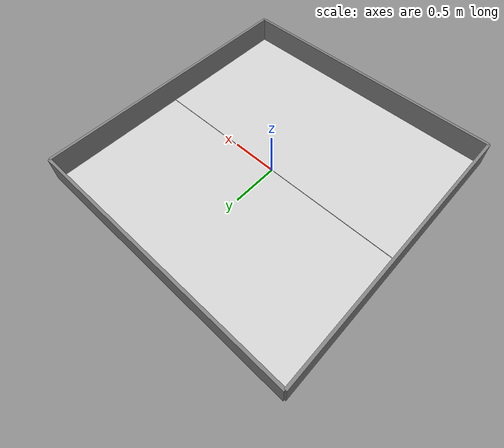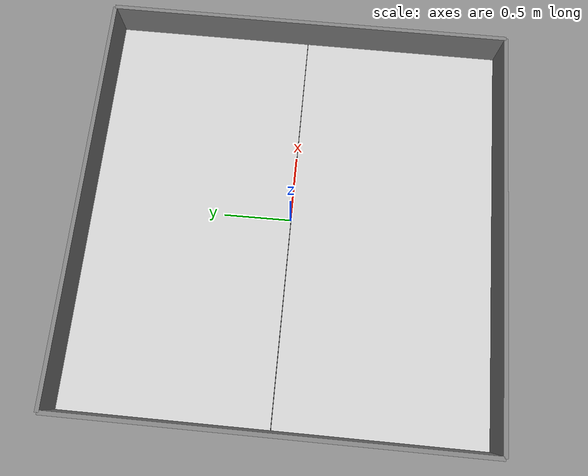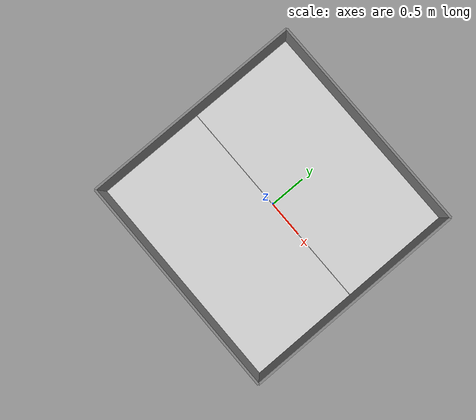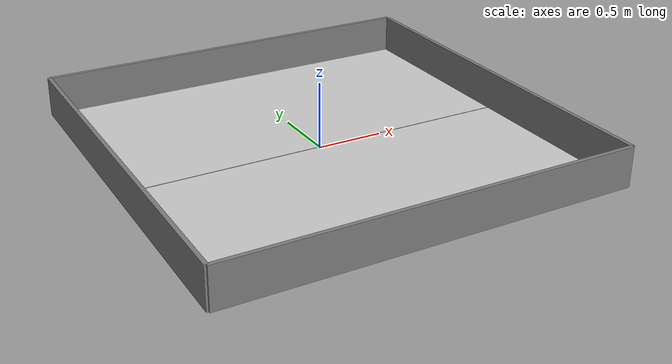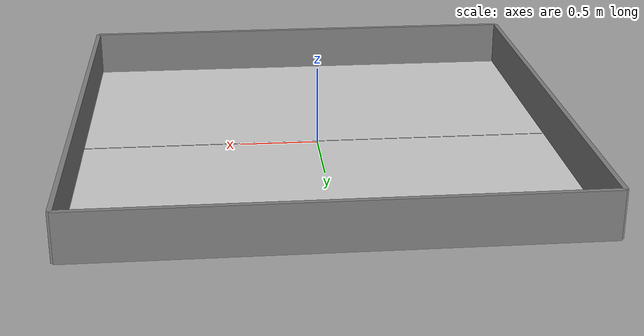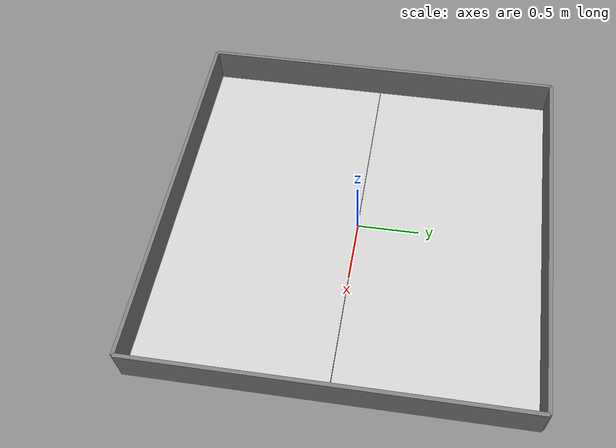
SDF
<?xml version="1.0" ?>
<sdf version="1.9">
  <world name="dancing_round">

    <!-- Sun (Directional Light) -->
    <light type="directional" name="sun">
      <cast_shadows>true</cast_shadows>
      <pose>0 0 10 0 0 0</pose>
      <diffuse>0.8 0.8 0.8 1</diffuse>
      <specular>0.2 0.2 0.2 1</specular>
      <attenuation>
        <range>1000</range>
        <constant>0.9</constant>
        <linear>0.01</linear>
        <quadratic>0.001</quadratic>
      </attenuation>
      <direction>-0.5 0.1 -0.9</direction>
    </light>

    <!-- Custom Ground Plane (White Floor) -->
    <model name="arena_floor">
      <static>true</static>
      <link name="link">
        <collision name="collision">
          <geometry>
            <box>
              <size>3 3 0.01</size>
            </box>
          </geometry>
        </collision>
        <visual name="visual">
          <geometry>
            <box>
              <size>3 3 0.01</size>
            </box>
          </geometry>
          <material>
            <ambient>0.8 0.8 0.8 1</ambient>
            <diffuse>0.8 0.8 0.8 1</diffuse>
            <specular>0.1 0.1 0.1 1</specular>
          </material>
        </visual>
      </link>
    </model>

    <!-- Walls -->
    <model name="arena_walls">
      <static>true</static>
      <pose>0 0 0.15 0 0 0</pose> <!-- Half height of wall (30cm) is 15cm -->
      <link name="link">
        <collision name="collision_north">
          <pose>0 1.515 0 0 0 0</pose>
          <geometry>
            <box>
              <size>3.03 0.03 0.3</size>
            </box>
          </geometry>
        </collision>
        <visual name="visual_north">
          <pose>0 1.515 0 0 0 0</pose>
          <geometry>
            <box>
              <size>3.03 0.03 0.3</size>
            </box>
          </geometry>
          <material>
            <ambient>0.5 0.5 0.5 1</ambient>
            <diffuse>0.5 0.5 0.5 1</diffuse>
            <specular>0.1 0.1 0.1 1</specular>
          </material>
        </visual>

        <collision name="collision_south">
          <pose>0 -1.515 0 0 0 0</pose>
          <geometry>
            <box>
              <size>3.03 0.03 0.3</size>
            </box>
          </geometry>
        </collision>
        <visual name="visual_south">
          <pose>0 -1.515 0 0 0 0</pose>
          <geometry>
            <box>
              <size>3.03 0.03 0.3</size>
            </box>
          </geometry>
          <material>
            <ambient>0.5 0.5 0.5 1</ambient>
            <diffuse>0.5 0.5 0.5 1</diffuse>
            <specular>0.1 0.1 0.1 1</specular>
          </material>
        </visual>

        <collision name="collision_east">
          <pose>1.515 0 0 0 0 0</pose>
          <geometry>
            <box>
              <size>0.03 3.03 0.3</size>
            </box>
          </geometry>
        </collision>
        <visual name="visual_east">
          <pose>1.515 0 0 0 0 0</pose>
          <geometry>
            <box>
              <size>0.03 3.03 0.3</size>
            </box>
          </geometry>
          <material>
            <ambient>0.5 0.5 0.5 1</ambient>
            <diffuse>0.5 0.5 0.5 1</diffuse>
            <specular>0.1 0.1 0.1 1</specular>
          </material>
        </visual>

        <collision name="collision_west">
          <pose>-1.515 0 0 0 0 0</pose>
          <geometry>
            <box>
              <size>0.03 3.03 0.3</size>
            </box>
          </geometry>
        </collision>
        <visual name="visual_west">
          <pose>-1.515 0 0 0 0 0</pose>
          <geometry>
            <box>
              <size>0.03 3.03 0.3</size>
            </box>
          </geometry>
          <material>
            <ambient>0.5 0.5 0.5 1</ambient>
            <diffuse>0.5 0.5 0.5 1</diffuse>
            <specular>0.1 0.1 0.1 1</specular>
          </material>
        </visual>
      </link>
    </model>

    <!-- Center Divider Thread -->
    <model name="divider_thread">
      <static>true</static>
      <pose>0 0 0.0055 0 0 0</pose> <!-- Just above floor (0.005 + 0.0005) -->
      <link name="link">
        <visual name="visual">
          <geometry>
            <box>
              <size>3.0 0.005 0.001</size> <!-- 3m long, 5mm wide, 1mm high -->
            </box>
          </geometry>
          <material>
            <ambient>0 0 0 1</ambient>
            <diffuse>0 0 0 1</diffuse> <!-- Black -->
            <specular>0.1 0.1 0.1 1</specular>
          </material>
        </visual>
      </link>
    </model>

  </world>
</sdf>
